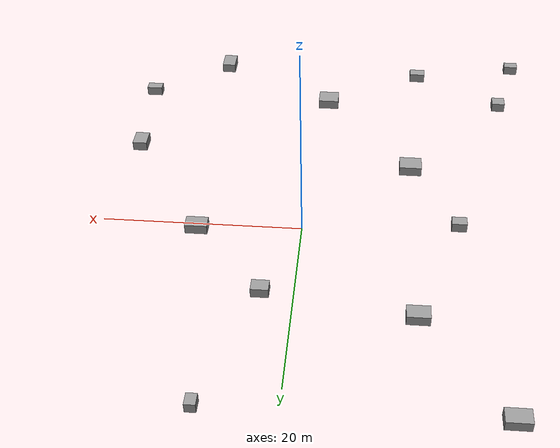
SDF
<sdf version="1.7">
 <world name="default">
  <light name="sun" type="directional">
   <pose>0 0 10 0 -0 0</pose>
   <diffuse>0.8 0.8 0.8 1</diffuse>
   <specular>0.2 0.2 0.2 1</specular>
   <attenuation>
    <range>1000</range>
    <constant>0.9</constant>
    <linear>0.01</linear>
    <quadratic>0.001</quadratic>
   </attenuation>
   <direction>-0.5 0.1 -0.9</direction>
   <spot><inner_angle>0</inner_angle><outer_angle>0</outer_angle><falloff>0</falloff></spot>
  </light>
  <spherical_coordinates>
   <surface_model>EARTH_WGS84</surface_model>
   <latitude_deg>37.3208</latitude_deg>
   <longitude_deg>120.126</longitude_deg>
   <elevation>130</elevation>
   <heading_deg>180</heading_deg>
  </spherical_coordinates>
  <physics type="ode">
   <real_time_update_rate>100</real_time_update_rate>
   <max_step_size>0.01</max_step_size>
   <real_time_factor>1</real_time_factor>
   <ode>
    <solver>
     <type>quick</type>
     <iters>150</iters>
     <precon_iters>0</precon_iters>
     <sor>1.4</sor>
     <use_dynamic_moi_rescaling>1</use_dynamic_moi_rescaling>
    </solver>
    <constraints>
     <cfm>1e-05</cfm>
     <erp>0.2</erp>
     <contact_max_correcting_vel>2000</contact_max_correcting_vel>
     <contact_surface_layer>0.01</contact_surface_layer>
    </constraints>
   </ode>
  </physics>
  <gravity>0 0 -9.8</gravity>
  <magnetic_field>6e-06 2.3e-05 -4.2e-05</magnetic_field>
  <atmosphere type="adiabatic"/>
  <scene><ambient>0.4 0.4 0.4 1</ambient><background>0.7 0.7 0.7 1</background><shadows>1</shadows></scene>
  <audio><device>default</device></audio>
  <model name="unit_box">
   <pose>-23.159 -30.5937 0.5 0 -0 0</pose>
   <link name="link">
    <inertial>
     <mass>1</mass>
     <inertia>
      <ixx>0.166667</ixx>
      <ixy>0</ixy>
      <ixz>0</ixz>
      <iyy>0.166667</iyy>
      <iyz>0</iyz>
      <izz>0.166667</izz>
     </inertia>
    </inertial>
    <collision name="collision"><geometry><box><size>1.5 1 1</size></box></geometry></collision>
    <visual name="visual">
     <geometry><box><size>1.5 1 1</size></box></geometry>
     <material>
      <script><name>Gazebo/Grey</name><uri>file://media/materials/scripts/gazebo.material</uri></script>
     </material>
    </visual>
   </link>
  </model>
  <model name="unit_box_0">
   <pose>-11.7268 -28.1324 0.5 0 -0 0</pose>
   <link name="link">
    <inertial>
     <mass>1</mass>
     <inertia>
      <ixx>0.166667</ixx>
      <ixy>0</ixy>
      <ixz>0</ixz>
      <iyy>0.166667</iyy>
      <iyz>0</iyz>
      <izz>0.166667</izz>
     </inertia>
    </inertial>
    <collision name="collision"><geometry><box><size>1.7 1.1 1</size></box></geometry></collision>
    <visual name="visual">
     <geometry><box><size>1.7 1.1 1</size></box></geometry>
     <material>
      <script><name>Gazebo/Grey</name><uri>file://media/materials/scripts/gazebo.material</uri></script>
     </material>
    </visual>
   </link>
  </model>
  <model name="unit_box_1">
   <pose>11.2827 -29.2566 0.5 0 -0 0</pose>
   <link name="link">
    <inertial>
     <mass>1</mass>
     <inertia>
      <ixx>0.166667</ixx>
      <ixy>0</ixy>
      <ixz>0</ixz>
      <iyy>0.166667</iyy>
      <iyz>0</iyz>
      <izz>0.166667</izz>
     </inertia>
    </inertial>
    <collision name="collision"><geometry><box><size>1.5 2.2 1</size></box></geometry></collision>
    <visual name="visual">
     <geometry><box><size>1.5 2.2 1</size></box></geometry>
     <material>
      <script><name>Gazebo/Grey</name><uri>file://media/materials/scripts/gazebo.material</uri></script>
     </material>
    </visual>
   </link>
  </model>
  <model name="unit_box_2">
   <pose>-1.4124 -21.5802 0.884314 -0 -0 -0</pose>
   <link name="link">
    <inertial>
     <mass>1</mass>
     <inertia>
      <ixx>0.166667</ixx>
      <ixy>0</ixy>
      <ixz>0</ixz>
      <iyy>0.166667</iyy>
      <iyz>0</iyz>
      <izz>0.166667</izz>
     </inertia>
    </inertial>
    <collision name="collision"><geometry><box><size>2.2 1.9 1</size></box></geometry></collision>
    <visual name="visual">
     <geometry><box><size>2.2 1.9 1</size></box></geometry>
     <material>
      <script><name>Gazebo/Grey</name><uri>file://media/materials/scripts/gazebo.material</uri></script>
     </material>
    </visual>
   </link>
  </model>
  <model name="unit_box_3">
   <pose>19.3672 -23.0121 0.5 0 -0 0</pose>
   <link name="link">
    <inertial>
     <mass>1</mass>
     <inertia>
      <ixx>0.166667</ixx>
      <ixy>0</ixy>
      <ixz>0</ixz>
      <iyy>0.166667</iyy>
      <iyz>0</iyz>
      <izz>0.166667</izz>
     </inertia>
    </inertial>
    <collision name="collision"><geometry><box><size>1.7 1 1</size></box></geometry></collision>
    <visual name="visual">
     <geometry><box><size>1.7 1 1</size></box></geometry>
     <material>
      <script><name>Gazebo/Grey</name><uri>file://media/materials/scripts/gazebo.material</uri></script>
     </material>
    </visual>
   </link>
  </model>
  <model name="unit_box_4">
   <pose>-21.0523 -22.6357 0.5 0 -0 0</pose>
   <link name="link">
    <inertial>
     <mass>1</mass>
     <inertia>
      <ixx>0.166667</ixx>
      <ixy>0</ixy>
      <ixz>0</ixz>
      <iyy>0.166667</iyy>
      <iyz>0</iyz>
      <izz>0.166667</izz>
     </inertia>
    </inertial>
    <collision name="collision"><geometry><box><size>1.4 1.3 1</size></box></geometry></collision>
    <visual name="visual">
     <geometry><box><size>1.4 1.3 1</size></box></geometry>
     <material>
      <script><name>Gazebo/Grey</name><uri>file://media/materials/scripts/gazebo.material</uri></script>
     </material>
    </visual>
   </link>
  </model>
  <model name="unit_box_5">
   <pose>-10.7981 -9.72192 0.885882 0 -0 0</pose>
   <link name="link">
    <inertial>
     <mass>1</mass>
     <inertia>
      <ixx>0.166667</ixx>
      <ixy>0</ixy>
      <ixz>0</ixz>
      <iyy>0.166667</iyy>
      <iyz>0</iyz>
      <izz>0.166667</izz>
     </inertia>
    </inertial>
    <collision name="collision"><geometry><box><size>2.3 1.8 1</size></box></geometry></collision>
    <visual name="visual">
     <geometry><box><size>2.3 1.8 1</size></box></geometry>
     <material>
      <script><name>Gazebo/Grey</name><uri>file://media/materials/scripts/gazebo.material</uri></script>
     </material>
    </visual>
   </link>
  </model>
  <model name="unit_box_6">
   <pose>18.6685 -12.0666 0.898431 0 -0 0</pose>
   <link name="link">
    <inertial>
     <mass>1</mass>
     <inertia>
      <ixx>0.166667</ixx>
      <ixy>0</ixy>
      <ixz>0</ixz>
      <iyy>0.166667</iyy>
      <iyz>0</iyz>
      <izz>0.166667</izz>
     </inertia>
    </inertial>
    <collision name="collision"><geometry><box><size>1.5 1.9 1</size></box></geometry></collision>
    <visual name="visual">
     <geometry><box><size>1.5 1.9 1</size></box></geometry>
     <material>
      <script><name>Gazebo/Grey</name><uri>file://media/materials/scripts/gazebo.material</uri></script>
     </material>
    </visual>
   </link>
  </model>
  <model name="unit_box_7">
   <pose>10.3097 1.16334 0.881176 -0 -0 -0</pose>
   <link name="link">
    <inertial>
     <mass>1</mass>
     <inertia>
      <ixx>0.166667</ixx>
      <ixy>0</ixy>
      <ixz>0</ixz>
      <iyy>0.166667</iyy>
      <iyz>0</iyz>
      <izz>0.166667</izz>
     </inertia>
    </inertial>
    <collision name="collision"><geometry><box><size>2.2 1.4 1</size></box></geometry></collision>
    <visual name="visual">
     <geometry><box><size>2.2 1.4 1</size></box></geometry>
     <material>
      <script><name>Gazebo/Grey</name><uri>file://media/materials/scripts/gazebo.material</uri></script>
     </material>
    </visual>
   </link>
  </model>
  <model name="unit_box_8">
   <pose>-15.6312 -1.24597 0.5 0 -0 0</pose>
   <link name="link">
    <inertial>
     <mass>1</mass>
     <inertia>
      <ixx>0.166667</ixx>
      <ixy>0</ixy>
      <ixz>0</ixz>
      <iyy>0.166667</iyy>
      <iyz>0</iyz>
      <izz>0.166667</izz>
     </inertia>
    </inertial>
    <collision name="collision"><geometry><box><size>1.5 1.1 1</size></box></geometry></collision>
    <visual name="visual">
     <geometry><box><size>1.5 1.1 1</size></box></geometry>
     <material>
      <script><name>Gazebo/Grey</name><uri>file://media/materials/scripts/gazebo.material</uri></script>
     </material>
    </visual>
   </link>
  </model>
  <model name="unit_box_9">
   <pose>-11.392 11.6279 0.884314 -0 -0 -0</pose>
   <link name="link">
    <inertial>
     <mass>1</mass>
     <inertia>
      <ixx>0.166667</ixx>
      <ixy>0</ixy>
      <ixz>0</ixz>
      <iyy>0.166667</iyy>
      <iyz>0</iyz>
      <izz>0.166667</izz>
     </inertia>
    </inertial>
    <collision name="collision"><geometry><box><size>2.2 1.5 1</size></box></geometry></collision>
    <visual name="visual">
     <geometry><box><size>2.2 1.5 1</size></box></geometry>
     <material>
      <script><name>Gazebo/Grey</name><uri>file://media/materials/scripts/gazebo.material</uri></script>
     </material>
    </visual>
   </link>
  </model>
  <model name="unit_box_10">
   <pose>3.12435 9.00551 0.5 0 -0 0</pose>
   <link name="link">
    <inertial>
     <mass>1</mass>
     <inertia>
      <ixx>0.166667</ixx>
      <ixy>0</ixy>
      <ixz>0</ixz>
      <iyy>0.166667</iyy>
      <iyz>0</iyz>
      <izz>0.166667</izz>
     </inertia>
    </inertial>
    <collision name="collision"><geometry><box><size>1.7 1.3 1</size></box></geometry></collision>
    <visual name="visual">
     <geometry><box><size>1.7 1.3 1</size></box></geometry>
     <material>
      <script><name>Gazebo/Grey</name><uri>file://media/materials/scripts/gazebo.material</uri></script>
     </material>
    </visual>
   </link>
  </model>
  <model name="unit_box_11">
   <pose>-19.2863 21.9945 0.5 0 -0 0</pose>
   <link name="link">
    <inertial>
     <mass>1</mass>
     <inertia>
      <ixx>0.166667</ixx>
      <ixy>0</ixy>
      <ixz>0</ixz>
      <iyy>0.166667</iyy>
      <iyz>0</iyz>
      <izz>0.166667</izz>
     </inertia>
    </inertial>
    <collision name="collision"><geometry><box><size>2.3 1.5 1</size></box></geometry></collision>
    <visual name="visual">
     <geometry><box><size>2.3 1.5 1</size></box></geometry>
     <material>
      <script><name>Gazebo/Grey</name><uri>file://media/materials/scripts/gazebo.material</uri></script>
     </material>
    </visual>
   </link>
  </model>
  <model name="unit_box_12">
   <pose>7.16162 22.5911 0.9 0 -0 0</pose>
   <link name="link">
    <inertial>
     <mass>1</mass>
     <inertia>
      <ixx>0.166667</ixx>
      <ixy>0</ixy>
      <ixz>0</ixz>
      <iyy>0.166667</iyy>
      <iyz>0</iyz>
      <izz>0.166667</izz>
     </inertia>
    </inertial>
    <collision name="collision"><geometry><box><size>1 1.2 1</size></box></geometry></collision>
    <visual name="visual">
     <geometry><box><size>1 1.2 1</size></box></geometry>
     <material>
      <script><name>Gazebo/Grey</name><uri>file://media/materials/scripts/gazebo.material</uri></script>
     </material>
    </visual>
   </link>
  </model>
 </world>
</sdf>
